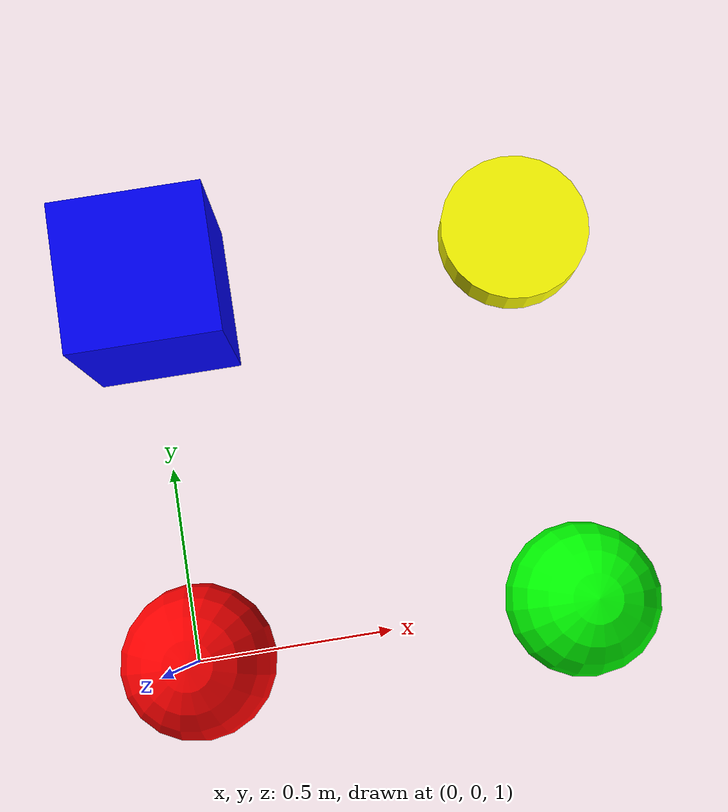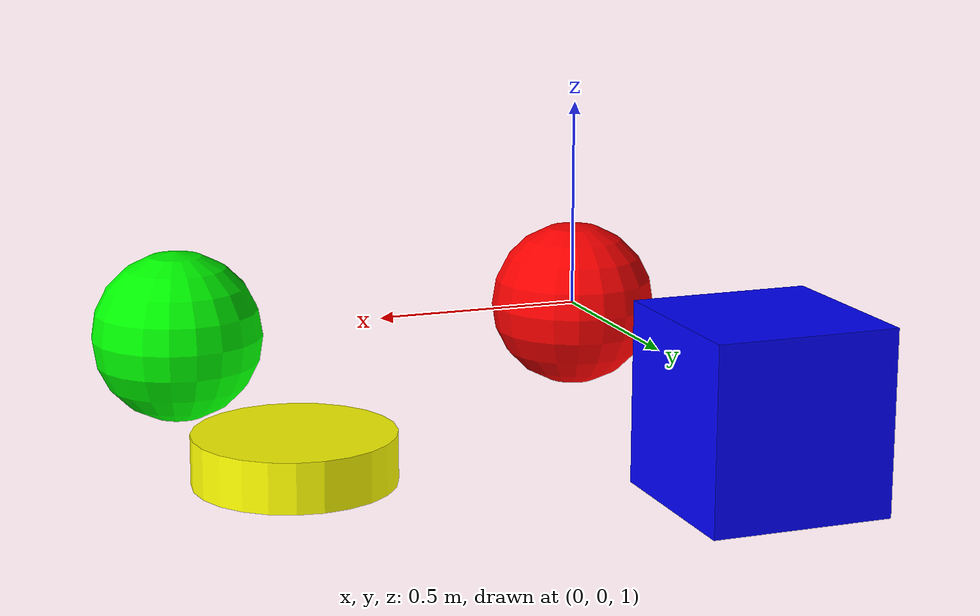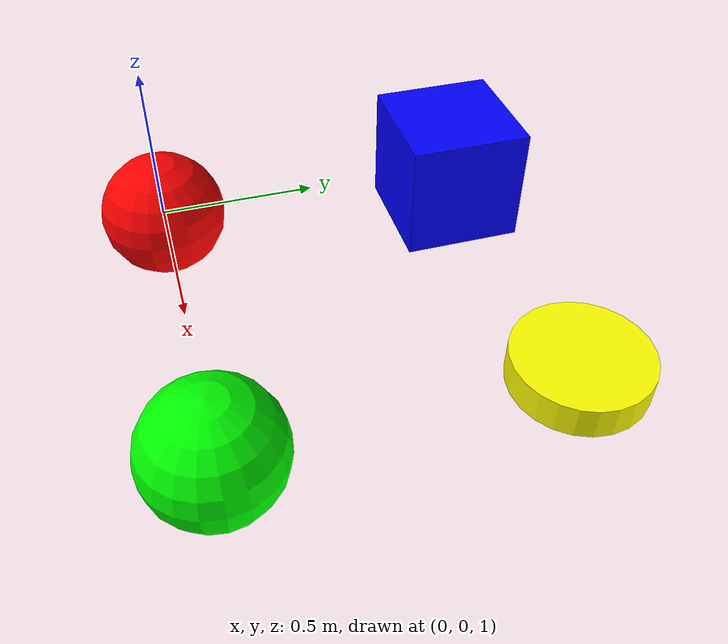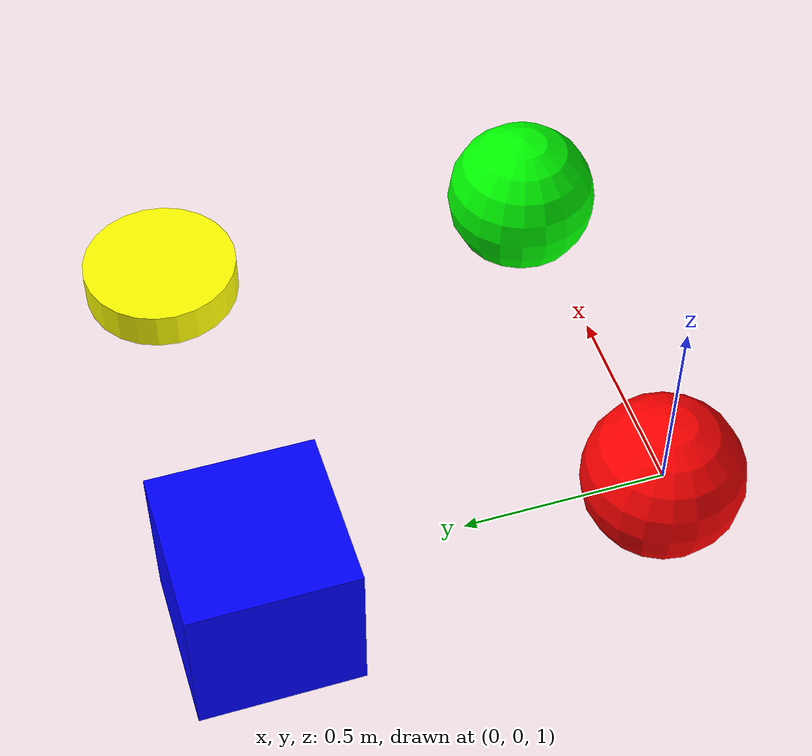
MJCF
<mujoco model="create_find_delete_attach_test">
    <option timestep = "0.005" gravity="0 0 -9.81"/>
    <worldbody>

        <!-- Sphere 1 (hidden) -->
        <body name="object_1" pos="0 0 1">
            <geom type="sphere" size="0.2" density="1" solref="0.01 1" solimp="0.9999 0.9999 0.001" rgba="1 0 0 1"/>
            <joint name="object_1_joint" type="free"/>
        </body>

        <!-- Sphere 2 -->
        <body name="object_2" pos="1 0 1">
            <geom type="sphere" size="0.2" density="1" solref="0.01 1" solimp="0.9999 0.9999 0.001" rgba="0 1 0 1"/>
            <joint name="object_2_joint" type="free"/>
        </body>

        <!-- Box -->
        <body name="object_3" pos="0 1 1">
            <geom type="box" size="0.2 0.2 0.2" density="10" rgba="0 0 1 1"/>
            <joint name="object_3_joint" type="free"/>
        </body>

        <!-- Cylinder -->
        <body name="object_4" pos="1 1 1">
            <geom type="cylinder" size="0.2 0.05" density="10" rgba="1 1 0 1"/>
            <joint name="object_4_joint" type="free"/>
        </body>
    </worldbody>
</mujoco>
